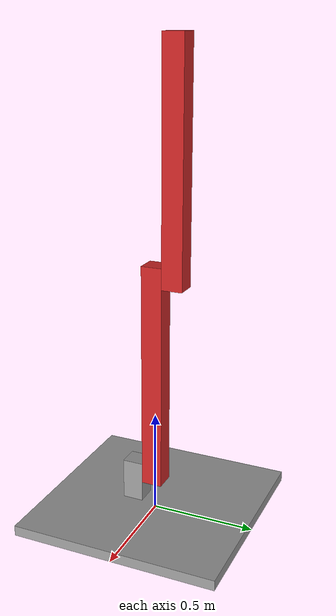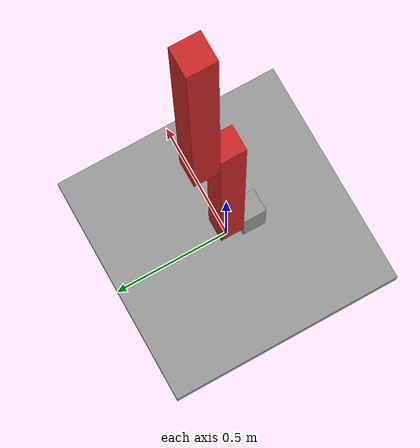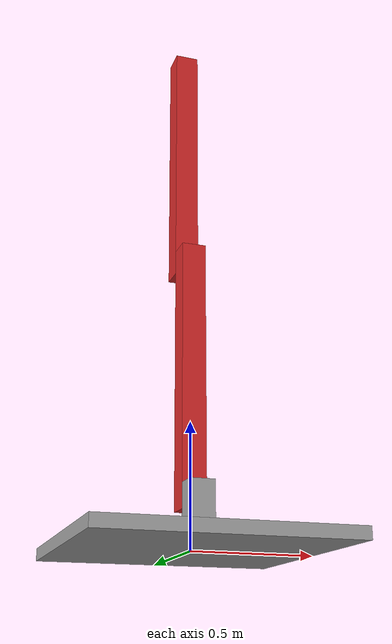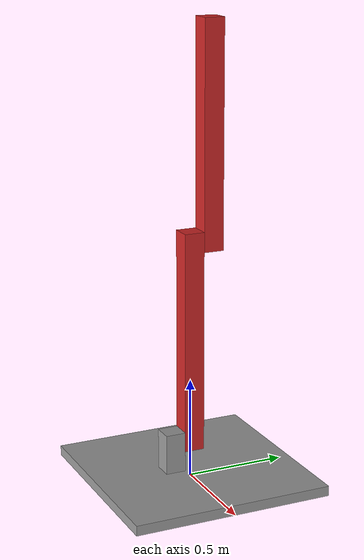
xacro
<?xml version="1.0"?>
<!-- Balancing Double Pendulum -->
<robot name="double_pendulum" xmlns:xacro="http://www.ros.org/wiki/xacro">

  <!-- Constants for robot dimensions -->
  <xacro:property name="PI" value="3.1415926535897931"/>
  <xacro:property name="mass" value="1.0" /> <!-- arbitrary value for mass -->
  <xacro:property name="width" value="0.1" /> <!-- Square dimensions (widthxwidth) of beams -->
  <xacro:property name="height1" value="0.2" /> <!-- Link 1 -->
  <xacro:property name="height2" value="1.1" /> <!-- Link 2 -->
  <xacro:property name="height3" value="1.1" /> <!-- Link 3 -->

  <xacro:property name="foot_height" value="0.05" /> <!-- Foot dimensions -->
  <xacro:property name="foot_width" value="1.0" />
  <xacro:property name="foot_mass" value="0.2" /> <!-- negligible mass for the foot -->

  <xacro:property name="axel_offset" value="0.05" /> <!-- How far keep joints away from each other -->

  <!-- Import all Gazebo-customization elements, including Gazebo colors -->
  <xacro:include filename="$(find double_pendulum_description)/urdf/double_pendulum.gazebo" />
  <!-- Import Rviz colors -->
  <xacro:include filename="$(find double_pendulum_description)/urdf/materials.xacro" />

  <!-- Used for fixing robot foot to the world -->

  <!-- Foot Link-->
  <link name="foot">
    <collision>
      <origin xyz="0 0 ${foot_height/2}" rpy="0 0 0"/>
      <geometry>
        <box size="${foot_width} ${foot_width} ${foot_height}"/>
      </geometry>
    </collision>

    <visual>
      <origin xyz="0 0 ${foot_height/2}" rpy="0 0 0"/>
      <geometry>
        <box size="${foot_width} ${foot_width} ${foot_height}"/>
      </geometry>
      <material name="grey"/>
    </visual>

    <inertial>
      <origin xyz="0 0 ${foot_height/2}" rpy="0 0 0"/>
      <mass value="${foot_mass}"/>
    <inertia
        ixx="${foot_mass / 12.0 * (foot_width*foot_width + foot_height*foot_height)}" ixy="0.0" ixz="0.0"
        iyy="${foot_mass / 12.0 * (foot_height*foot_height + foot_width*foot_width)}" iyz="0.0"
        izz="${foot_mass / 12.0 * (foot_width*foot_width + foot_width*foot_width)}"/>
    </inertial>
  </link>

  <joint name="foot_joint" type="fixed">
    <parent link="foot"/>
    <child link="link1"/>
    <origin xyz="0 -${width} ${foot_height}" rpy="0 0 0"/>
    <axis xyz="0 1 0"/>
  </joint>

  <!-- Base Link -->
  <link name="link1">
    <collision>
      <origin xyz="0 0 ${height1/2}" rpy="0 0 0"/>
      <geometry>
        <box size="${width} ${width} ${height1}"/>
      </geometry>
    </collision>

    <visual>
      <origin xyz="0 0 ${height1/2}" rpy="0 0 0"/>
      <geometry>
        <box size="${width} ${width} ${height1}"/>
      </geometry>
      <material name="grey"/>
    </visual>

    <inertial>
      <origin xyz="0 0 ${height1/2}" rpy="0 0 0"/>
      <mass value="${foot_mass}"/>
    <inertia
        ixx="${foot_mass / 12.0 * (width*width + height1*height1)}" ixy="0.0" ixz="0.0"
        iyy="${foot_mass / 12.0 * (height1*height1 + width*width)}" iyz="0.0"
        izz="${foot_mass / 12.0 * (width*width + width*width)}"/>
    </inertial>
  </link>

  <joint name="joint1" type="continuous">
    <parent link="link1"/>
    <child link="link2"/>
    <origin xyz="0 ${width} ${height1 - axel_offset}" rpy="0 0 0"/>
    <axis xyz="0 1 0"/>
    <dynamics damping="0.7"/>
  </joint>

  <!-- Middle Link -->
  <link name="link2">
    <collision>
      <origin xyz="0 0 ${height2/2 - axel_offset}" rpy="0 0 0"/>
      <geometry>
        <box size="${width} ${width} ${height2+axel_offset}"/>
      </geometry>
    </collision>

    <visual>
      <origin xyz="0 0 ${height2/2 - axel_offset}" rpy="0 0 0"/>
      <geometry>
        <box size="${width} ${width} ${height2}"/>
      </geometry>
      <material name="red"/>
    </visual>

    <inertial>
      <origin xyz="0 0 ${height2/2 - axel_offset}" rpy="0 0 0"/>
      <mass value="${mass}"/>
      <inertia
          ixx="${mass / 12.0 * (width*width + height2*height2)}" ixy="0.0" ixz="0.0"
          iyy="${mass / 12.0 * (height2*height2 + width*width)}" iyz="0.0"
          izz="${mass / 12.0 * (width*width + width*width)}"/>
      </inertial>
  </link>

  <joint name="joint2" type="continuous">
    <parent link="link2"/>
    <child link="link3"/>
    <origin xyz="0 ${width} ${height2 - axel_offset*2}" rpy="0 0 0"/>
    <axis xyz="0 1 0"/>
    <dynamics damping="0.7"/>
  </joint>

  <!-- Top Link -->
  <link name="link3">
    <collision>
      <origin xyz="0 0 ${height3/2 - axel_offset}" rpy="0 0 0"/>
      <geometry>
        <box size="${width} ${width} ${height3}"/>
      </geometry>
    </collision>

    <visual>
      <origin xyz="0 0 ${height3/2 - axel_offset}" rpy="0 0 0"/>
      <geometry>
        <box size="${width} ${width} ${height3}"/>
      </geometry>
      <material name="red"/>
    </visual>

    <inertial>
      <origin xyz="0 0 ${height3/2 - axel_offset}" rpy="0 0 0"/>
      <mass value="${mass}"/>
      <inertia
          ixx="${mass / 12.0 * (width*width + height3*height3)}" ixy="0.0" ixz="0.0"
          iyy="${mass / 12.0 * (height3*height3 + width*width)}" iyz="0.0"
          izz="${mass / 12.0 * (width*width + width*width)}"/>
      </inertial>
  </link>

  <!-- Motors so we can actuate the joints -->
  <transmission name="tran1">
    <type>transmission_interface/SimpleTransmission</type>
    <joint name="joint1">
      <hardwareInterface>hardware_interface/EffortJointInterface</hardwareInterface>
    </joint>
    <actuator name="motor1">
      <hardwareInterface>hardware_interface/EffortJointInterface</hardwareInterface>
      <mechanicalReduction>1</mechanicalReduction>
    </actuator>
  </transmission>

  <transmission name="tran2">
    <type>transmission_interface/SimpleTransmission</type>
    <joint name="joint2">
      <hardwareInterface>hardware_interface/EffortJointInterface</hardwareInterface>
    </joint>
    <actuator name="motor2">
      <hardwareInterface>hardware_interface/EffortJointInterface</hardwareInterface>
      <mechanicalReduction>1</mechanicalReduction>
    </actuator>
  </transmission>

</robot>
